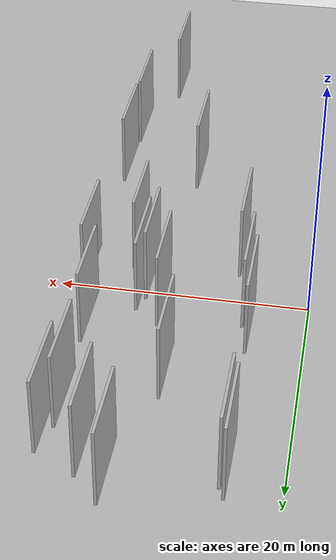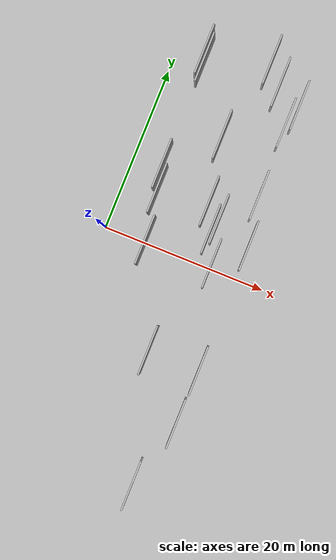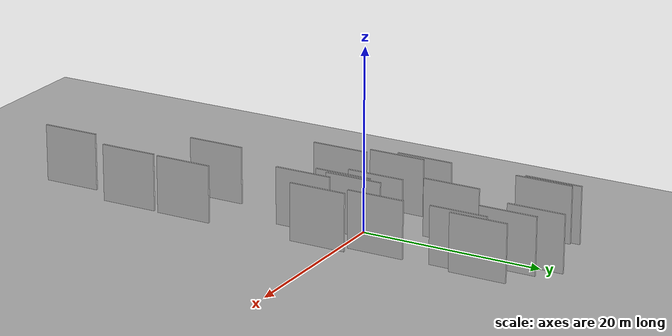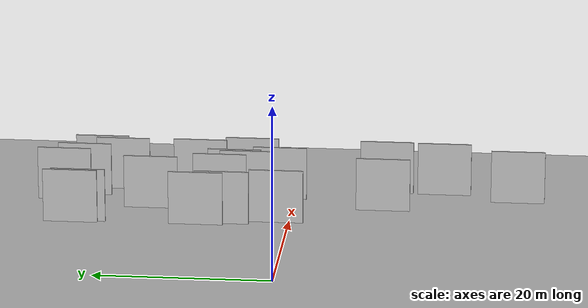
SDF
<?xml version="1.0" encoding="utf-8"?>

<sdf version="1.6">

   <world name="default">

      <gui fullscreen="0">

         <camera name="user_camera">

            <pose>-15 0 4.57585 0 0 0</pose>

            <view_controller>orbit</view_controller>

         </camera>

      </gui>

      <scene>

         <sky>

           <clouds>

             <speed>12</speed>

           </clouds>

         </sky>

         <ambient>0.4 0.4 0.4 1</ambient>

         <background>0.7 0.7 0.7 1</background>

         <shadows>1</shadows>

      </scene>

      <gravity>0 0 -9.8066</gravity>

      <magnetic_field>6e-06 2.3e-05 -4.2e-05</magnetic_field>

      <physics default="0" name="default_physics" type="ode">

         <ode>

            <solver>

               <type>quick</type>

               <iters>10</iters>

               <sor>1.0</sor>

               <use_dynamic_moi_rescaling>0</use_dynamic_moi_rescaling>

            </solver>

            <constraints>

               <cfm>0</cfm>

               <erp>0.2</erp>

               <contact_max_correcting_vel>100</contact_max_correcting_vel>

               <contact_surface_layer>0.001</contact_surface_layer>

            </constraints>

         </ode>

         <max_step_size>0.004</max_step_size>

         <real_time_factor>1</real_time_factor>

         <real_time_update_rate>250</real_time_update_rate>

      </physics>

      <light name="sun" type="directional">

         <cast_shadows>1</cast_shadows>

         <pose>0 0 10 0 0 0</pose>

         <diffuse>0.8 0.8 0.8 1</diffuse>

         <specular>0.2 0.2 0.2 1</specular>

         <attenuation>

            <range>1000</range>

            <constant>0.9</constant>

            <linear>0.01</linear>

            <quadratic>0.001</quadratic>

         </attenuation>

         <direction>-0.5 0.1 -0.9</direction>

      </light>

      <include>

         <name>ground_plane_1</name>

         <uri>model://HANNAS_ground_plane</uri>

         <pose>0 0 0  0 0 0</pose>

      </include>

      <include>

         <name>ground_plane_2</name>

         <uri>model://HANNAS_ground_plane</uri>

         <pose>100 0 0  0 0 0</pose>

      </include>

      <model name="HANNAS_wall_1">

         <static>1</static>

         <pose frame="">15.4635 9.6667 5.0 0.000000 0.000000 1.570796</pose>

         <link name="link">

            <pose frame="">0 0 3.00 0 0 0</pose>

            <collision name="collision">

               <geometry>

                  <box>

                     <size>6.00 0.2 6.00</size>

                  </box>

               </geometry>

               <max_contacts>10</max_contacts>

               <surface>

                  <contact>

                     <ode/>

                  </contact>

                  <bounce/>

                  <friction>

                     <torsional>

                        <ode/>

                     </torsional>

                     <ode/>

                  </friction>

               </surface>

            </collision>

            <visual name="visual">

               <cast_shadows>0</cast_shadows>

               <geometry>

                  <box>

                     <size>6.00 0.2 6.00</size>

                  </box>

               </geometry>

               <material>

                  <script>

                     <uri>model://HANNAS_wall/materials/scripts</uri>

                     <uri>model://HANNAS_wall/materials/textures</uri>

                     <name>vrc/HANNAS_wall</name>

                  </script>

               </material>

            </visual>

            <self_collide>0</self_collide>

            <enable_wind>0</enable_wind>

            <kinematic>0</kinematic>

         </link>

      </model>

      <model name="HANNAS_wall_2">

         <static>1</static>

         <pose frame="">5.3082 0.1436 5.0 0.000000 0.000000 1.570796</pose>

         <link name="link">

            <pose frame="">0 0 3.00 0 0 0</pose>

            <collision name="collision">

               <geometry>

                  <box>

                     <size>6.00 0.2 6.00</size>

                  </box>

               </geometry>

               <max_contacts>10</max_contacts>

               <surface>

                  <contact>

                     <ode/>

                  </contact>

                  <bounce/>

                  <friction>

                     <torsional>

                        <ode/>

                     </torsional>

                     <ode/>

                  </friction>

               </surface>

            </collision>

            <visual name="visual">

               <cast_shadows>0</cast_shadows>

               <geometry>

                  <box>

                     <size>6.00 0.2 6.00</size>

                  </box>

               </geometry>

               <material>

                  <script>

                     <uri>model://HANNAS_wall/materials/scripts</uri>

                     <uri>model://HANNAS_wall/materials/textures</uri>

                     <name>vrc/HANNAS_wall</name>

                  </script>

               </material>

            </visual>

            <self_collide>0</self_collide>

            <enable_wind>0</enable_wind>

            <kinematic>0</kinematic>

         </link>

      </model>

      <model name="HANNAS_wall_3">

         <static>1</static>

         <pose frame="">10.4455 6.9441 5.0 0.000000 0.000000 1.570796</pose>

         <link name="link">

            <pose frame="">0 0 3.00 0 0 0</pose>

            <collision name="collision">

               <geometry>

                  <box>

                     <size>6.00 0.2 6.00</size>

                  </box>

               </geometry>

               <max_contacts>10</max_contacts>

               <surface>

                  <contact>

                     <ode/>

                  </contact>

                  <bounce/>

                  <friction>

                     <torsional>

                        <ode/>

                     </torsional>

                     <ode/>

                  </friction>

               </surface>

            </collision>

            <visual name="visual">

               <cast_shadows>0</cast_shadows>

               <geometry>

                  <box>

                     <size>6.00 0.2 6.00</size>

                  </box>

               </geometry>

               <material>

                  <script>

                     <uri>model://HANNAS_wall/materials/scripts</uri>

                     <uri>model://HANNAS_wall/materials/textures</uri>

                     <name>vrc/HANNAS_wall</name>

                  </script>

               </material>

            </visual>

            <self_collide>0</self_collide>

            <enable_wind>0</enable_wind>

            <kinematic>0</kinematic>

         </link>

      </model>

      <model name="HANNAS_wall_4">

         <static>1</static>

         <pose frame="">16.5040 3.8738 5.0 0.000000 0.000000 1.570796</pose>

         <link name="link">

            <pose frame="">0 0 3.00 0 0 0</pose>

            <collision name="collision">

               <geometry>

                  <box>

                     <size>6.00 0.2 6.00</size>

                  </box>

               </geometry>

               <max_contacts>10</max_contacts>

               <surface>

                  <contact>

                     <ode/>

                  </contact>

                  <bounce/>

                  <friction>

                     <torsional>

                        <ode/>

                     </torsional>

                     <ode/>

                  </friction>

               </surface>

            </collision>

            <visual name="visual">

               <cast_shadows>0</cast_shadows>

               <geometry>

                  <box>

                     <size>6.00 0.2 6.00</size>

                  </box>

               </geometry>

               <material>

                  <script>

                     <uri>model://HANNAS_wall/materials/scripts</uri>

                     <uri>model://HANNAS_wall/materials/textures</uri>

                     <name>vrc/HANNAS_wall</name>

                  </script>

               </material>

            </visual>

            <self_collide>0</self_collide>

            <enable_wind>0</enable_wind>

            <kinematic>0</kinematic>

         </link>

      </model>

      <model name="HANNAS_wall_5">

         <static>1</static>

         <pose frame="">11.0874 24.4993 5.0 0.000000 0.000000 1.570796</pose>

         <link name="link">

            <pose frame="">0 0 3.00 0 0 0</pose>

            <collision name="collision">

               <geometry>

                  <box>

                     <size>6.00 0.2 6.00</size>

                  </box>

               </geometry>

               <max_contacts>10</max_contacts>

               <surface>

                  <contact>

                     <ode/>

                  </contact>

                  <bounce/>

                  <friction>

                     <torsional>

                        <ode/>

                     </torsional>

                     <ode/>

                  </friction>

               </surface>

            </collision>

            <visual name="visual">

               <cast_shadows>0</cast_shadows>

               <geometry>

                  <box>

                     <size>6.00 0.2 6.00</size>

                  </box>

               </geometry>

               <material>

                  <script>

                     <uri>model://HANNAS_wall/materials/scripts</uri>

                     <uri>model://HANNAS_wall/materials/textures</uri>

                     <name>vrc/HANNAS_wall</name>

                  </script>

               </material>

            </visual>

            <self_collide>0</self_collide>

            <enable_wind>0</enable_wind>

            <kinematic>0</kinematic>

         </link>

      </model>

      <model name="HANNAS_wall_6">

         <static>1</static>

         <pose frame="">3.8618 8.9038 5.0 0.000000 0.000000 1.570796</pose>

         <link name="link">

            <pose frame="">0 0 3.00 0 0 0</pose>

            <collision name="collision">

               <geometry>

                  <box>

                     <size>6.00 0.2 6.00</size>

                  </box>

               </geometry>

               <max_contacts>10</max_contacts>

               <surface>

                  <contact>

                     <ode/>

                  </contact>

                  <bounce/>

                  <friction>

                     <torsional>

                        <ode/>

                     </torsional>

                     <ode/>

                  </friction>

               </surface>

            </collision>

            <visual name="visual">

               <cast_shadows>0</cast_shadows>

               <geometry>

                  <box>

                     <size>6.00 0.2 6.00</size>

                  </box>

               </geometry>

               <material>

                  <script>

                     <uri>model://HANNAS_wall/materials/scripts</uri>

                     <uri>model://HANNAS_wall/materials/textures</uri>

                     <name>vrc/HANNAS_wall</name>

                  </script>

               </material>

            </visual>

            <self_collide>0</self_collide>

            <enable_wind>0</enable_wind>

            <kinematic>0</kinematic>

         </link>

      </model>

      <model name="HANNAS_wall_7">

         <static>1</static>

         <pose frame="">4.3916 6.0855 5.0 0.000000 0.000000 1.570796</pose>

         <link name="link">

            <pose frame="">0 0 3.00 0 0 0</pose>

            <collision name="collision">

               <geometry>

                  <box>

                     <size>6.00 0.2 6.00</size>

                  </box>

               </geometry>

               <max_contacts>10</max_contacts>

               <surface>

                  <contact>

                     <ode/>

                  </contact>

                  <bounce/>

                  <friction>

                     <torsional>

                        <ode/>

                     </torsional>

                     <ode/>

                  </friction>

               </surface>

            </collision>

            <visual name="visual">

               <cast_shadows>0</cast_shadows>

               <geometry>

                  <box>

                     <size>6.00 0.2 6.00</size>

                  </box>

               </geometry>

               <material>

                  <script>

                     <uri>model://HANNAS_wall/materials/scripts</uri>

                     <uri>model://HANNAS_wall/materials/textures</uri>

                     <name>vrc/HANNAS_wall</name>

                  </script>

               </material>

            </visual>

            <self_collide>0</self_collide>

            <enable_wind>0</enable_wind>

            <kinematic>0</kinematic>

         </link>

      </model>

      <model name="HANNAS_wall_8">

         <static>1</static>

         <pose frame="">14.2609 -26.1903 5.0 0.000000 0.000000 1.570796</pose>

         <link name="link">

            <pose frame="">0 0 3.00 0 0 0</pose>

            <collision name="collision">

               <geometry>

                  <box>

                     <size>6.00 0.2 6.00</size>

                  </box>

               </geometry>

               <max_contacts>10</max_contacts>

               <surface>

                  <contact>

                     <ode/>

                  </contact>

                  <bounce/>

                  <friction>

                     <torsional>

                        <ode/>

                     </torsional>

                     <ode/>

                  </friction>

               </surface>

            </collision>

            <visual name="visual">

               <cast_shadows>0</cast_shadows>

               <geometry>

                  <box>

                     <size>6.00 0.2 6.00</size>

                  </box>

               </geometry>

               <material>

                  <script>

                     <uri>model://HANNAS_wall/materials/scripts</uri>

                     <uri>model://HANNAS_wall/materials/textures</uri>

                     <name>vrc/HANNAS_wall</name>

                  </script>

               </material>

            </visual>

            <self_collide>0</self_collide>

            <enable_wind>0</enable_wind>

            <kinematic>0</kinematic>

         </link>

      </model>

      <model name="HANNAS_wall_9">

         <static>1</static>

         <pose frame="">10.3071 -11.3317 5.0 0.000000 0.000000 1.570796</pose>

         <link name="link">

            <pose frame="">0 0 3.00 0 0 0</pose>

            <collision name="collision">

               <geometry>

                  <box>

                     <size>6.00 0.2 6.00</size>

                  </box>

               </geometry>

               <max_contacts>10</max_contacts>

               <surface>

                  <contact>

                     <ode/>

                  </contact>

                  <bounce/>

                  <friction>

                     <torsional>

                        <ode/>

                     </torsional>

                     <ode/>

                  </friction>

               </surface>

            </collision>

            <visual name="visual">

               <cast_shadows>0</cast_shadows>

               <geometry>

                  <box>

                     <size>6.00 0.2 6.00</size>

                  </box>

               </geometry>

               <material>

                  <script>

                     <uri>model://HANNAS_wall/materials/scripts</uri>

                     <uri>model://HANNAS_wall/materials/textures</uri>

                     <name>vrc/HANNAS_wall</name>

                  </script>

               </material>

            </visual>

            <self_collide>0</self_collide>

            <enable_wind>0</enable_wind>

            <kinematic>0</kinematic>

         </link>

      </model>

      <model name="HANNAS_wall_10">

         <static>1</static>

         <pose frame="">12.2491 5.4722 5.0 0.000000 0.000000 1.570796</pose>

         <link name="link">

            <pose frame="">0 0 3.00 0 0 0</pose>

            <collision name="collision">

               <geometry>

                  <box>

                     <size>6.00 0.2 6.00</size>

                  </box>

               </geometry>

               <max_contacts>10</max_contacts>

               <surface>

                  <contact>

                     <ode/>

                  </contact>

                  <bounce/>

                  <friction>

                     <torsional>

                        <ode/>

                     </torsional>

                     <ode/>

                  </friction>

               </surface>

            </collision>

            <visual name="visual">

               <cast_shadows>0</cast_shadows>

               <geometry>

                  <box>

                     <size>6.00 0.2 6.00</size>

                  </box>

               </geometry>

               <material>

                  <script>

                     <uri>model://HANNAS_wall/materials/scripts</uri>

                     <uri>model://HANNAS_wall/materials/textures</uri>

                     <name>vrc/HANNAS_wall</name>

                  </script>

               </material>

            </visual>

            <self_collide>0</self_collide>

            <enable_wind>0</enable_wind>

            <kinematic>0</kinematic>

         </link>

      </model>

      <model name="HANNAS_wall_11">

         <static>1</static>

         <pose frame="">3.8617 21.9052 5.0 0.000000 0.000000 1.570796</pose>

         <link name="link">

            <pose frame="">0 0 3.00 0 0 0</pose>

            <collision name="collision">

               <geometry>

                  <box>

                     <size>6.00 0.2 6.00</size>

                  </box>

               </geometry>

               <max_contacts>10</max_contacts>

               <surface>

                  <contact>

                     <ode/>

                  </contact>

                  <bounce/>

                  <friction>

                     <torsional>

                        <ode/>

                     </torsional>

                     <ode/>

                  </friction>

               </surface>

            </collision>

            <visual name="visual">

               <cast_shadows>0</cast_shadows>

               <geometry>

                  <box>

                     <size>6.00 0.2 6.00</size>

                  </box>

               </geometry>

               <material>

                  <script>

                     <uri>model://HANNAS_wall/materials/scripts</uri>

                     <uri>model://HANNAS_wall/materials/textures</uri>

                     <name>vrc/HANNAS_wall</name>

                  </script>

               </material>

            </visual>

            <self_collide>0</self_collide>

            <enable_wind>0</enable_wind>

            <kinematic>0</kinematic>

         </link>

      </model>

      <model name="HANNAS_wall_12">

         <static>1</static>

         <pose frame="">16.3467 -17.8709 5.0 0.000000 0.000000 1.570796</pose>

         <link name="link">

            <pose frame="">0 0 3.00 0 0 0</pose>

            <collision name="collision">

               <geometry>

                  <box>

                     <size>6.00 0.2 6.00</size>

                  </box>

               </geometry>

               <max_contacts>10</max_contacts>

               <surface>

                  <contact>

                     <ode/>

                  </contact>

                  <bounce/>

                  <friction>

                     <torsional>

                        <ode/>

                     </torsional>

                     <ode/>

                  </friction>

               </surface>

            </collision>

            <visual name="visual">

               <cast_shadows>0</cast_shadows>

               <geometry>

                  <box>

                     <size>6.00 0.2 6.00</size>

                  </box>

               </geometry>

               <material>

                  <script>

                     <uri>model://HANNAS_wall/materials/scripts</uri>

                     <uri>model://HANNAS_wall/materials/textures</uri>

                     <name>vrc/HANNAS_wall</name>

                  </script>

               </material>

            </visual>

            <self_collide>0</self_collide>

            <enable_wind>0</enable_wind>

            <kinematic>0</kinematic>

         </link>

      </model>

      <model name="HANNAS_wall_13">

         <static>1</static>

         <pose frame="">8.9907 14.5030 5.0 0.000000 0.000000 1.570796</pose>

         <link name="link">

            <pose frame="">0 0 3.00 0 0 0</pose>

            <collision name="collision">

               <geometry>

                  <box>

                     <size>6.00 0.2 6.00</size>

                  </box>

               </geometry>

               <max_contacts>10</max_contacts>

               <surface>

                  <contact>

                     <ode/>

                  </contact>

                  <bounce/>

                  <friction>

                     <torsional>

                        <ode/>

                     </torsional>

                     <ode/>

                  </friction>

               </surface>

            </collision>

            <visual name="visual">

               <cast_shadows>0</cast_shadows>

               <geometry>

                  <box>

                     <size>6.00 0.2 6.00</size>

                  </box>

               </geometry>

               <material>

                  <script>

                     <uri>model://HANNAS_wall/materials/scripts</uri>

                     <uri>model://HANNAS_wall/materials/textures</uri>

                     <name>vrc/HANNAS_wall</name>

                  </script>

               </material>

            </visual>

            <self_collide>0</self_collide>

            <enable_wind>0</enable_wind>

            <kinematic>0</kinematic>

         </link>

      </model>

      <model name="HANNAS_wall_14">

         <static>1</static>

         <pose frame="">15.9243 20.8385 5.0 0.000000 0.000000 1.570796</pose>

         <link name="link">

            <pose frame="">0 0 3.00 0 0 0</pose>

            <collision name="collision">

               <geometry>

                  <box>

                     <size>6.00 0.2 6.00</size>

                  </box>

               </geometry>

               <max_contacts>10</max_contacts>

               <surface>

                  <contact>

                     <ode/>

                  </contact>

                  <bounce/>

                  <friction>

                     <torsional>

                        <ode/>

                     </torsional>

                     <ode/>

                  </friction>

               </surface>

            </collision>

            <visual name="visual">

               <cast_shadows>0</cast_shadows>

               <geometry>

                  <box>

                     <size>6.00 0.2 6.00</size>

                  </box>

               </geometry>

               <material>

                  <script>

                     <uri>model://HANNAS_wall/materials/scripts</uri>

                     <uri>model://HANNAS_wall/materials/textures</uri>

                     <name>vrc/HANNAS_wall</name>

                  </script>

               </material>

            </visual>

            <self_collide>0</self_collide>

            <enable_wind>0</enable_wind>

            <kinematic>0</kinematic>

         </link>

      </model>

      <model name="HANNAS_wall_15">

         <static>1</static>

         <pose frame="">16.4871 -11.3814 5.0 0.000000 0.000000 1.570796</pose>

         <link name="link">

            <pose frame="">0 0 3.00 0 0 0</pose>

            <collision name="collision">

               <geometry>

                  <box>

                     <size>6.00 0.2 6.00</size>

                  </box>

               </geometry>

               <max_contacts>10</max_contacts>

               <surface>

                  <contact>

                     <ode/>

                  </contact>

                  <bounce/>

                  <friction>

                     <torsional>

                        <ode/>

                     </torsional>

                     <ode/>

                  </friction>

               </surface>

            </collision>

            <visual name="visual">

               <cast_shadows>0</cast_shadows>

               <geometry>

                  <box>

                     <size>6.00 0.2 6.00</size>

                  </box>

               </geometry>

               <material>

                  <script>

                     <uri>model://HANNAS_wall/materials/scripts</uri>

                     <uri>model://HANNAS_wall/materials/textures</uri>

                     <name>vrc/HANNAS_wall</name>

                  </script>

               </material>

            </visual>

            <self_collide>0</self_collide>

            <enable_wind>0</enable_wind>

            <kinematic>0</kinematic>

         </link>

      </model>

      <model name="HANNAS_wall_16">

         <static>1</static>

         <pose frame="">12.9405 22.4615 5.0 0.000000 0.000000 1.570796</pose>

         <link name="link">

            <pose frame="">0 0 3.00 0 0 0</pose>

            <collision name="collision">

               <geometry>

                  <box>

                     <size>6.00 0.2 6.00</size>

                  </box>

               </geometry>

               <max_contacts>10</max_contacts>

               <surface>

                  <contact>

                     <ode/>

                  </contact>

                  <bounce/>

                  <friction>

                     <torsional>

                        <ode/>

                     </torsional>

                     <ode/>

                  </friction>

               </surface>

            </collision>

            <visual name="visual">

               <cast_shadows>0</cast_shadows>

               <geometry>

                  <box>

                     <size>6.00 0.2 6.00</size>

                  </box>

               </geometry>

               <material>

                  <script>

                     <uri>model://HANNAS_wall/materials/scripts</uri>

                     <uri>model://HANNAS_wall/materials/textures</uri>

                     <name>vrc/HANNAS_wall</name>

                  </script>

               </material>

            </visual>

            <self_collide>0</self_collide>

            <enable_wind>0</enable_wind>

            <kinematic>0</kinematic>

         </link>

      </model>

      <model name="HANNAS_wall_17">

         <static>1</static>

         <pose frame="">15.2388 18.4017 5.0 0.000000 0.000000 1.570796</pose>

         <link name="link">

            <pose frame="">0 0 3.00 0 0 0</pose>

            <collision name="collision">

               <geometry>

                  <box>

                     <size>6.00 0.2 6.00</size>

                  </box>

               </geometry>

               <max_contacts>10</max_contacts>

               <surface>

                  <contact>

                     <ode/>

                  </contact>

                  <bounce/>

                  <friction>

                     <torsional>

                        <ode/>

                     </torsional>

                     <ode/>

                  </friction>

               </surface>

            </collision>

            <visual name="visual">

               <cast_shadows>0</cast_shadows>

               <geometry>

                  <box>

                     <size>6.00 0.2 6.00</size>

                  </box>

               </geometry>

               <material>

                  <script>

                     <uri>model://HANNAS_wall/materials/scripts</uri>

                     <uri>model://HANNAS_wall/materials/textures</uri>

                     <name>vrc/HANNAS_wall</name>

                  </script>

               </material>

            </visual>

            <self_collide>0</self_collide>

            <enable_wind>0</enable_wind>

            <kinematic>0</kinematic>

         </link>

      </model>

      <model name="HANNAS_wall_18">

         <static>1</static>

         <pose frame="">3.4929 22.7436 5.0 0.000000 0.000000 1.570796</pose>

         <link name="link">

            <pose frame="">0 0 3.00 0 0 0</pose>

            <collision name="collision">

               <geometry>

                  <box>

                     <size>6.00 0.2 6.00</size>

                  </box>

               </geometry>

               <max_contacts>10</max_contacts>

               <surface>

                  <contact>

                     <ode/>

                  </contact>

                  <bounce/>

                  <friction>

                     <torsional>

                        <ode/>

                     </torsional>

                     <ode/>

                  </friction>

               </surface>

            </collision>

            <visual name="visual">

               <cast_shadows>0</cast_shadows>

               <geometry>

                  <box>

                     <size>6.00 0.2 6.00</size>

                  </box>

               </geometry>

               <material>

                  <script>

                     <uri>model://HANNAS_wall/materials/scripts</uri>

                     <uri>model://HANNAS_wall/materials/textures</uri>

                     <name>vrc/HANNAS_wall</name>

                  </script>

               </material>

            </visual>

            <self_collide>0</self_collide>

            <enable_wind>0</enable_wind>

            <kinematic>0</kinematic>

         </link>

      </model>

      <model name="HANNAS_wall_19">

         <static>1</static>

         <pose frame="">11.7911 4.0654 5.0 0.000000 0.000000 1.570796</pose>

         <link name="link">

            <pose frame="">0 0 3.00 0 0 0</pose>

            <collision name="collision">

               <geometry>

                  <box>

                     <size>6.00 0.2 6.00</size>

                  </box>

               </geometry>

               <max_contacts>10</max_contacts>

               <surface>

                  <contact>

                     <ode/>

                  </contact>

                  <bounce/>

                  <friction>

                     <torsional>

                        <ode/>

                     </torsional>

                     <ode/>

                  </friction>

               </surface>

            </collision>

            <visual name="visual">

               <cast_shadows>0</cast_shadows>

               <geometry>

                  <box>

                     <size>6.00 0.2 6.00</size>

                  </box>

               </geometry>

               <material>

                  <script>

                     <uri>model://HANNAS_wall/materials/scripts</uri>

                     <uri>model://HANNAS_wall/materials/textures</uri>

                     <name>vrc/HANNAS_wall</name>

                  </script>

               </material>

            </visual>

            <self_collide>0</self_collide>

            <enable_wind>0</enable_wind>

            <kinematic>0</kinematic>

         </link>

      </model>

      <model name="HANNAS_wall_20">

         <static>1</static>

         <pose frame="">13.3346 0.4604 5.0 0.000000 0.000000 1.570796</pose>

         <link name="link">

            <pose frame="">0 0 3.00 0 0 0</pose>

            <collision name="collision">

               <geometry>

                  <box>

                     <size>6.00 0.2 6.00</size>

                  </box>

               </geometry>

               <max_contacts>10</max_contacts>

               <surface>

                  <contact>

                     <ode/>

                  </contact>

                  <bounce/>

                  <friction>

                     <torsional>

                        <ode/>

                     </torsional>

                     <ode/>

                  </friction>

               </surface>

            </collision>

            <visual name="visual">

               <cast_shadows>0</cast_shadows>

               <geometry>

                  <box>

                     <size>6.00 0.2 6.00</size>

                  </box>

               </geometry>

               <material>

                  <script>

                     <uri>model://HANNAS_wall/materials/scripts</uri>

                     <uri>model://HANNAS_wall/materials/textures</uri>

                     <name>vrc/HANNAS_wall</name>

                  </script>

               </material>

            </visual>

            <self_collide>0</self_collide>

            <enable_wind>0</enable_wind>

            <kinematic>0</kinematic>

         </link>

      </model>

   </world>

</sdf>

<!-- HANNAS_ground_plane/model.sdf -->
<sdf version="1.4">
<model name="HANNAS_ground_plane">
  <static>true</static>
    <link name="link">
      <collision name="collision">
        <geometry>
          <plane>
            <normal>0 0 1</normal>
            <size>1000 1000</size>
          </plane>
        </geometry>
        <surface>
          <friction>
            <ode>
              <mu>100</mu>
              <mu2>50</mu2>
            </ode>
          </friction>
        </surface>
      </collision>
      <visual name="visual">
        <cast_shadows>false</cast_shadows>
        <geometry>
          <plane>
            <normal>0 0 1</normal>
            <size>1000 1000</size>
          </plane>
        </geometry>
        <material>
          <script>
            <uri>model://HANNAS_ground_plane/materials/scripts/HANNAS_ground_plane.material</uri>
	    <uri>model://HANNAS_ground_plane/materials/textures</uri>
            <name>HANNASGroundPlane/Image</name>
          </script>
        </material>
      </visual>
    </link>
  </model>
</sdf>
